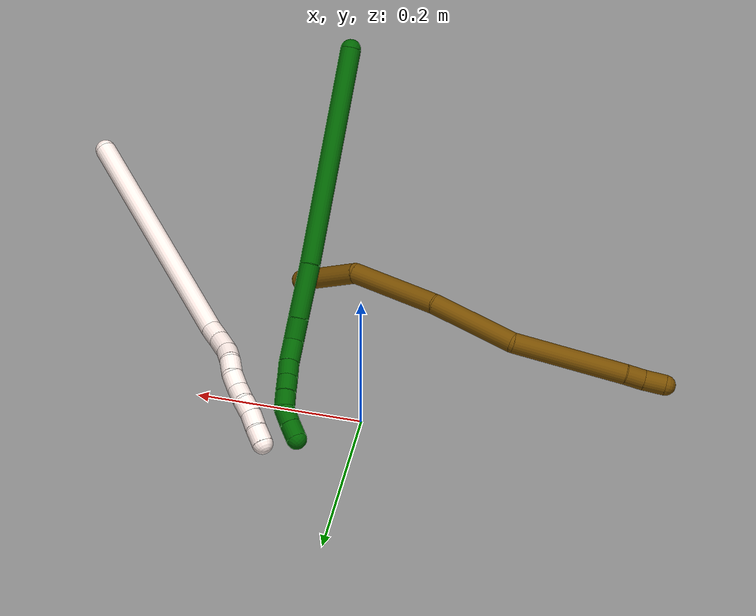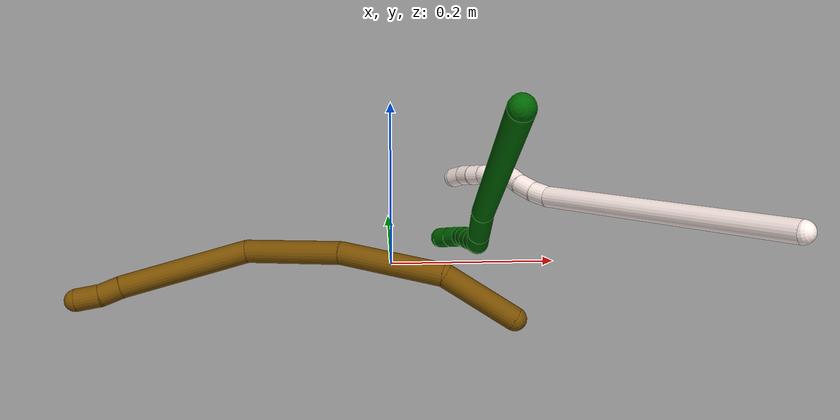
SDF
<sdf version="1.7">
 <world name="default">
  <model name="6">
   <static>0</static>
   <link name="6">
    <collision name="collision-cylinder-e_1_1_4">
     <pose>0.045755 0.05452 -0.114457 -2.69705 0.346357 -1.31739</pose>
     <geometry><cylinder><radius>0.0125</radius><length>0.269566</length></cylinder></geometry>
     <surface>
      <friction><ode><mu>1.16</mu><mu2>1.16</mu2><slip1>0</slip1><slip2>0</slip2></ode></friction>
      <contact><ode><kp>1e+06</kp><kd>1</kd><max_vel>0</max_vel><min_depth>0.001</min_depth></ode></contact>
     </surface>
    </collision>
    <visual name="visual-cylinder-e_1_1_4">
     <pose>0.045755 0.05452 -0.114457 -2.69705 0.346357 -1.31739</pose>
     <geometry><cylinder><radius>0.0125</radius><length>0.269566</length></cylinder></geometry>
     <material><ambient>0 0.392157 0.003922 1</ambient></material>
    </visual>
    <collision name="collision-cylinder-e_2_4_5">
     <pose>0.101264 0.124661 -0.256332 -2.62373 0.29977 -1.03636</pose>
     <geometry><cylinder><radius>0.0125</radius><length>0.066055</length></cylinder></geometry>
     <surface>
      <friction><ode><mu>1.16</mu><mu2>1.16</mu2><slip1>0</slip1><slip2>0</slip2></ode></friction>
      <contact><ode><kp>1e+06</kp><kd>1</kd><max_vel>0</max_vel><min_depth>0.001</min_depth></ode></contact>
     </surface>
    </collision>
    <visual name="visual-cylinder-e_2_4_5">
     <pose>0.101264 0.124661 -0.256332 -2.62373 0.29977 -1.03636</pose>
     <geometry><cylinder><radius>0.0125</radius><length>0.066055</length></cylinder></geometry>
     <material><ambient>0 0.392157 0.003922 1</ambient></material>
    </visual>
    <collision name="collision-cylinder-e_3_5_6">
     <pose>0.115183 0.147477 -0.295336 -2.58581 0.296487 -0.964534</pose>
     <geometry><cylinder><radius>0.0125</radius><length>0.028523</length></cylinder></geometry>
     <surface>
      <friction><ode><mu>1.16</mu><mu2>1.16</mu2><slip1>0</slip1><slip2>0</slip2></ode></friction>
      <contact><ode><kp>1e+06</kp><kd>1</kd><max_vel>0</max_vel><min_depth>0.001</min_depth></ode></contact>
     </surface>
    </collision>
    <visual name="visual-cylinder-e_3_5_6">
     <pose>0.115183 0.147477 -0.295336 -2.58581 0.296487 -0.964534</pose>
     <geometry><cylinder><radius>0.0125</radius><length>0.028523</length></cylinder></geometry>
     <material><ambient>0 0.392157 0.003922 1</ambient></material>
    </visual>
    <collision name="collision-cylinder-e_4_6_7">
     <pose>0.125493 0.15517 -0.32133 -3.10717 0.402814 -2.97339</pose>
     <geometry><cylinder><radius>0.0125</radius><length>0.031341</length></cylinder></geometry>
     <surface>
      <friction><ode><mu>1.16</mu><mu2>1.16</mu2><slip1>0</slip1><slip2>0</slip2></ode></friction>
      <contact><ode><kp>1e+06</kp><kd>1</kd><max_vel>0</max_vel><min_depth>0.001</min_depth></ode></contact>
     </surface>
    </collision>
    <visual name="visual-cylinder-e_4_6_7">
     <pose>0.125493 0.15517 -0.32133 -3.10717 0.402814 -2.97339</pose>
     <geometry><cylinder><radius>0.0125</radius><length>0.031341</length></cylinder></geometry>
     <material><ambient>0 0.392157 0.003922 1</ambient></material>
    </visual>
    <collision name="collision-cylinder-e_5_7_8">
     <pose>0.136616 0.156085 -0.344762 -3.09518 0.503747 -2.9617</pose>
     <geometry><cylinder><radius>0.0125</radius><length>0.020631</length></cylinder></geometry>
     <surface>
      <friction><ode><mu>1.16</mu><mu2>1.16</mu2><slip1>0</slip1><slip2>0</slip2></ode></friction>
      <contact><ode><kp>1e+06</kp><kd>1</kd><max_vel>0</max_vel><min_depth>0.001</min_depth></ode></contact>
     </surface>
    </collision>
    <visual name="visual-cylinder-e_5_7_8">
     <pose>0.136616 0.156085 -0.344762 -3.09518 0.503747 -2.9617</pose>
     <geometry><cylinder><radius>0.0125</radius><length>0.020631</length></cylinder></geometry>
     <material><ambient>0 0.392157 0.003922 1</ambient></material>
    </visual>
    <collision name="collision-cylinder-e_6_8_9">
     <pose>0.146455 0.156569 -0.363136 -3.13472 0.479372 -3.11345</pose>
     <geometry><cylinder><radius>0.0125</radius><length>0.021075</length></cylinder></geometry>
     <surface>
      <friction><ode><mu>1.16</mu><mu2>1.16</mu2><slip1>0</slip1><slip2>0</slip2></ode></friction>
      <contact><ode><kp>1e+06</kp><kd>1</kd><max_vel>0</max_vel><min_depth>0.001</min_depth></ode></contact>
     </surface>
    </collision>
    <visual name="visual-cylinder-e_6_8_9">
     <pose>0.146455 0.156569 -0.363136 -3.13472 0.479372 -3.11345</pose>
     <geometry><cylinder><radius>0.0125</radius><length>0.021075</length></cylinder></geometry>
     <material><ambient>0 0.392157 0.003922 1</ambient></material>
    </visual>
    <collision name="collision-cylinder-e_7_9_10">
     <pose>0.156285 0.157547 -0.381482 -3.04029 0.502519 -2.7516</pose>
     <geometry><cylinder><radius>0.0125</radius><length>0.020637</length></cylinder></geometry>
     <surface>
      <friction><ode><mu>1.16</mu><mu2>1.16</mu2><slip1>0</slip1><slip2>0</slip2></ode></friction>
      <contact><ode><kp>1e+06</kp><kd>1</kd><max_vel>0</max_vel><min_depth>0.001</min_depth></ode></contact>
     </surface>
    </collision>
    <visual name="visual-cylinder-e_7_9_10">
     <pose>0.156285 0.157547 -0.381482 -3.04029 0.502519 -2.7516</pose>
     <geometry><cylinder><radius>0.0125</radius><length>0.020637</length></cylinder></geometry>
     <material><ambient>0 0.392157 0.003922 1</ambient></material>
    </visual>
    <collision name="collision-cylinder-e_8_10_11">
     <pose>0.169825 0.159643 -0.397018 -2.96291 0.911291 -2.77997</pose>
     <geometry><cylinder><radius>0.0125</radius><length>0.021689</length></cylinder></geometry>
     <surface>
      <friction><ode><mu>1.16</mu><mu2>1.16</mu2><slip1>0</slip1><slip2>0</slip2></ode></friction>
      <contact><ode><kp>1e+06</kp><kd>1</kd><max_vel>0</max_vel><min_depth>0.001</min_depth></ode></contact>
     </surface>
    </collision>
    <visual name="visual-cylinder-e_8_10_11">
     <pose>0.169825 0.159643 -0.397018 -2.96291 0.911291 -2.77997</pose>
     <geometry><cylinder><radius>0.0125</radius><length>0.021689</length></cylinder></geometry>
     <material><ambient>0 0.392157 0.003922 1</ambient></material>
    </visual>
    <collision name="collision-cylinder-e_9_11_2">
     <pose>0.186703 0.161976 -0.409434 -2.948 0.946156 -2.76664</pose>
     <geometry><cylinder><radius>0.0125</radius><length>0.020482</length></cylinder></geometry>
     <surface>
      <friction><ode><mu>1.16</mu><mu2>1.16</mu2><slip1>0</slip1><slip2>0</slip2></ode></friction>
      <contact><ode><kp>1e+06</kp><kd>1</kd><max_vel>0</max_vel><min_depth>0.001</min_depth></ode></contact>
     </surface>
    </collision>
    <visual name="visual-cylinder-e_9_11_2">
     <pose>0.186703 0.161976 -0.409434 -2.948 0.946156 -2.76664</pose>
     <geometry><cylinder><radius>0.0125</radius><length>0.020482</length></cylinder></geometry>
     <material><ambient>0 0.392157 0.003922 1</ambient></material>
    </visual>
    <collision name="collision-sphere-2">
     <pose>0.19501 0.163128 -0.415311 0 -0 0</pose>
     <geometry><sphere><radius>0.0125</radius></sphere></geometry>
     <surface>
      <friction><ode><mu>1.16</mu><mu2>1.16</mu2><slip1>0</slip1><slip2>0</slip2></ode></friction>
      <contact><ode><kp>1e+06</kp><kd>1</kd><max_vel>0</max_vel><min_depth>0.001</min_depth></ode></contact>
     </surface>
    </collision>
    <visual name="visual-sphere-2">
     <pose>0.19501 0.163128 -0.415311 0 -0 0</pose>
     <geometry><sphere><radius>0.0125</radius></sphere></geometry>
     <material><ambient>0 0.392157 0.003922 1</ambient></material>
    </visual>
    <collision name="collision-sphere-11">
     <pose>0.178396 0.160824 -0.403557 0 -0 0</pose>
     <geometry><sphere><radius>0.0125</radius></sphere></geometry>
     <surface>
      <friction><ode><mu>1.16</mu><mu2>1.16</mu2><slip1>0</slip1><slip2>0</slip2></ode></friction>
      <contact><ode><kp>1e+06</kp><kd>1</kd><max_vel>0</max_vel><min_depth>0.001</min_depth></ode></contact>
     </surface>
    </collision>
    <visual name="visual-sphere-11">
     <pose>0.178396 0.160824 -0.403557 0 -0 0</pose>
     <geometry><sphere><radius>0.0125</radius></sphere></geometry>
     <material><ambient>0 0.392157 0.003922 1</ambient></material>
    </visual>
    <collision name="collision-sphere-10">
     <pose>0.161255 0.158462 -0.390479 0 -0 0</pose>
     <geometry><sphere><radius>0.0125</radius></sphere></geometry>
     <surface>
      <friction><ode><mu>1.16</mu><mu2>1.16</mu2><slip1>0</slip1><slip2>0</slip2></ode></friction>
      <contact><ode><kp>1e+06</kp><kd>1</kd><max_vel>0</max_vel><min_depth>0.001</min_depth></ode></contact>
     </surface>
    </collision>
    <visual name="visual-sphere-10">
     <pose>0.161255 0.158462 -0.390479 0 -0 0</pose>
     <geometry><sphere><radius>0.0125</radius></sphere></geometry>
     <material><ambient>0 0.392157 0.003922 1</ambient></material>
    </visual>
    <collision name="collision-sphere-9">
     <pose>0.151315 0.156633 -0.372486 0 -0 0</pose>
     <geometry><sphere><radius>0.0125</radius></sphere></geometry>
     <surface>
      <friction><ode><mu>1.16</mu><mu2>1.16</mu2><slip1>0</slip1><slip2>0</slip2></ode></friction>
      <contact><ode><kp>1e+06</kp><kd>1</kd><max_vel>0</max_vel><min_depth>0.001</min_depth></ode></contact>
     </surface>
    </collision>
    <visual name="visual-sphere-9">
     <pose>0.151315 0.156633 -0.372486 0 -0 0</pose>
     <geometry><sphere><radius>0.0125</radius></sphere></geometry>
     <material><ambient>0 0.392157 0.003922 1</ambient></material>
    </visual>
    <collision name="collision-sphere-4">
     <pose>0.091511 0.109041 -0.228915 0 -0 0</pose>
     <geometry><sphere><radius>0.0125</radius></sphere></geometry>
     <surface>
      <friction><ode><mu>1.16</mu><mu2>1.16</mu2><slip1>0</slip1><slip2>0</slip2></ode></friction>
      <contact><ode><kp>1e+06</kp><kd>1</kd><max_vel>0</max_vel><min_depth>0.001</min_depth></ode></contact>
     </surface>
    </collision>
    <visual name="visual-sphere-4">
     <pose>0.091511 0.109041 -0.228915 0 -0 0</pose>
     <geometry><sphere><radius>0.0125</radius></sphere></geometry>
     <material><ambient>0 0.392157 0.003922 1</ambient></material>
    </visual>
    <collision name="collision-sphere-1">
     <geometry><sphere><radius>0.0125</radius></sphere></geometry>
     <surface>
      <friction><ode><mu>1.16</mu><mu2>1.16</mu2><slip1>0</slip1><slip2>0</slip2></ode></friction>
      <contact><ode><kp>1e+06</kp><kd>1</kd><max_vel>0</max_vel><min_depth>0.001</min_depth></ode></contact>
     </surface>
    </collision>
    <visual name="visual-sphere-1">
     <geometry><sphere><radius>0.0125</radius></sphere></geometry>
     <material><ambient>0 0.392157 0.003922 1</ambient></material>
    </visual>
    <collision name="collision-sphere-8">
     <pose>0.141595 0.156504 -0.353787 0 -0 0</pose>
     <geometry><sphere><radius>0.0125</radius></sphere></geometry>
     <surface>
      <friction><ode><mu>1.16</mu><mu2>1.16</mu2><slip1>0</slip1><slip2>0</slip2></ode></friction>
      <contact><ode><kp>1e+06</kp><kd>1</kd><max_vel>0</max_vel><min_depth>0.001</min_depth></ode></contact>
     </surface>
    </collision>
    <visual name="visual-sphere-8">
     <pose>0.141595 0.156504 -0.353787 0 -0 0</pose>
     <geometry><sphere><radius>0.0125</radius></sphere></geometry>
     <material><ambient>0 0.392157 0.003922 1</ambient></material>
    </visual>
    <collision name="collision-sphere-5">
     <pose>0.111017 0.140281 -0.283749 0 -0 0</pose>
     <geometry><sphere><radius>0.0125</radius></sphere></geometry>
     <surface>
      <friction><ode><mu>1.16</mu><mu2>1.16</mu2><slip1>0</slip1><slip2>0</slip2></ode></friction>
      <contact><ode><kp>1e+06</kp><kd>1</kd><max_vel>0</max_vel><min_depth>0.001</min_depth></ode></contact>
     </surface>
    </collision>
    <visual name="visual-sphere-5">
     <pose>0.111017 0.140281 -0.283749 0 -0 0</pose>
     <geometry><sphere><radius>0.0125</radius></sphere></geometry>
     <material><ambient>0 0.392157 0.003922 1</ambient></material>
    </visual>
    <collision name="collision-sphere-6">
     <pose>0.11935 0.154674 -0.306922 0 -0 0</pose>
     <geometry><sphere><radius>0.0125</radius></sphere></geometry>
     <surface>
      <friction><ode><mu>1.16</mu><mu2>1.16</mu2><slip1>0</slip1><slip2>0</slip2></ode></friction>
      <contact><ode><kp>1e+06</kp><kd>1</kd><max_vel>0</max_vel><min_depth>0.001</min_depth></ode></contact>
     </surface>
    </collision>
    <visual name="visual-sphere-6">
     <pose>0.11935 0.154674 -0.306922 0 -0 0</pose>
     <geometry><sphere><radius>0.0125</radius></sphere></geometry>
     <material><ambient>0 0.392157 0.003922 1</ambient></material>
    </visual>
    <collision name="collision-sphere-7">
     <pose>0.131636 0.155666 -0.335738 0 -0 0</pose>
     <geometry><sphere><radius>0.0125</radius></sphere></geometry>
     <surface>
      <friction><ode><mu>1.16</mu><mu2>1.16</mu2><slip1>0</slip1><slip2>0</slip2></ode></friction>
      <contact><ode><kp>1e+06</kp><kd>1</kd><max_vel>0</max_vel><min_depth>0.001</min_depth></ode></contact>
     </surface>
    </collision>
    <visual name="visual-sphere-7">
     <pose>0.131636 0.155666 -0.335738 0 -0 0</pose>
     <geometry><sphere><radius>0.0125</radius></sphere></geometry>
     <material><ambient>0 0.392157 0.003922 1</ambient></material>
    </visual>
    <inertial>
     <pose>0.085759 0.097105 -0.211832 0 -0 0</pose>
     <mass>0.5</mass>
     <inertia>
      <ixx>-0.001114</ixx>
      <ixy>0</ixy>
      <ixz>0</ixz>
      <iyy>-0.001647</iyy>
      <iyz>0</iyz>
      <izz>-0.001285</izz>
     </inertia>
    </inertial>
   </link>
   <pose>0.095877 -0.363521 0.258541 -1.41943 0.112625 2.80318</pose>
  </model>
  <model name="11">
   <static>0</static>
   <link name="11">
    <collision name="collision-cylinder-e_1_1_4">
     <pose>-0.018289 0.018216 -0.154237 -3.02403 -0.117222 1.56791</pose>
     <geometry><cylinder><radius>0.0125</radius><length>0.312764</length></cylinder></geometry>
     <surface>
      <friction><ode><mu>1.16</mu><mu2>1.16</mu2><slip1>0</slip1><slip2>0</slip2></ode></friction>
      <contact><ode><kp>1e+06</kp><kd>1</kd><max_vel>0</max_vel><min_depth>0.001</min_depth></ode></contact>
     </surface>
    </collision>
    <visual name="visual-cylinder-e_1_1_4">
     <pose>-0.018289 0.018216 -0.154237 -3.02403 -0.117222 1.56791</pose>
     <geometry><cylinder><radius>0.0125</radius><length>0.312764</length></cylinder></geometry>
     <material><ambient>1 0.933333 0.909804 1</ambient></material>
    </visual>
    <collision name="collision-cylinder-e_2_4_5">
     <pose>-0.039181 0.038991 -0.318856 -2.89988 -0.238672 1.55804</pose>
     <geometry><cylinder><radius>0.0125</radius><length>0.02201</length></cylinder></geometry>
     <surface>
      <friction><ode><mu>1.16</mu><mu2>1.16</mu2><slip1>0</slip1><slip2>0</slip2></ode></friction>
      <contact><ode><kp>1e+06</kp><kd>1</kd><max_vel>0</max_vel><min_depth>0.001</min_depth></ode></contact>
     </surface>
    </collision>
    <visual name="visual-cylinder-e_2_4_5">
     <pose>-0.039181 0.038991 -0.318856 -2.89988 -0.238672 1.55804</pose>
     <geometry><cylinder><radius>0.0125</radius><length>0.02201</length></cylinder></geometry>
     <material><ambient>1 0.933333 0.909804 1</ambient></material>
    </visual>
    <collision name="collision-cylinder-e_3_5_6">
     <pose>-0.044761 0.045998 -0.340385 -2.76203 -0.243239 1.13332</pose>
     <geometry><cylinder><radius>0.0125</radius><length>0.024731</length></cylinder></geometry>
     <surface>
      <friction><ode><mu>1.16</mu><mu2>1.16</mu2><slip1>0</slip1><slip2>0</slip2></ode></friction>
      <contact><ode><kp>1e+06</kp><kd>1</kd><max_vel>0</max_vel><min_depth>0.001</min_depth></ode></contact>
     </surface>
    </collision>
    <visual name="visual-cylinder-e_3_5_6">
     <pose>-0.044761 0.045998 -0.340385 -2.76203 -0.243239 1.13332</pose>
     <geometry><cylinder><radius>0.0125</radius><length>0.024731</length></cylinder></geometry>
     <material><ambient>1 0.933333 0.909804 1</ambient></material>
    </visual>
    <collision name="collision-cylinder-e_4_6_7">
     <pose>-0.048822 0.055317 -0.360269 -2.63288 -0.107912 0.409641</pose>
     <geometry><cylinder><radius>0.0125</radius><length>0.020124</length></cylinder></geometry>
     <surface>
      <friction><ode><mu>1.16</mu><mu2>1.16</mu2><slip1>0</slip1><slip2>0</slip2></ode></friction>
      <contact><ode><kp>1e+06</kp><kd>1</kd><max_vel>0</max_vel><min_depth>0.001</min_depth></ode></contact>
     </surface>
    </collision>
    <visual name="visual-cylinder-e_4_6_7">
     <pose>-0.048822 0.055317 -0.360269 -2.63288 -0.107912 0.409641</pose>
     <geometry><cylinder><radius>0.0125</radius><length>0.020124</length></cylinder></geometry>
     <material><ambient>1 0.933333 0.909804 1</ambient></material>
    </visual>
    <collision name="collision-cylinder-e_5_7_8">
     <pose>-0.048516 0.063077 -0.378661 -2.85094 0.13708 -0.87714</pose>
     <geometry><cylinder><radius>0.0125</radius><length>0.020345</length></cylinder></geometry>
     <surface>
      <friction><ode><mu>1.16</mu><mu2>1.16</mu2><slip1>0</slip1><slip2>0</slip2></ode></friction>
      <contact><ode><kp>1e+06</kp><kd>1</kd><max_vel>0</max_vel><min_depth>0.001</min_depth></ode></contact>
     </surface>
    </collision>
    <visual name="visual-cylinder-e_5_7_8">
     <pose>-0.048516 0.063077 -0.378661 -2.85094 0.13708 -0.87714</pose>
     <geometry><cylinder><radius>0.0125</radius><length>0.020345</length></cylinder></geometry>
     <material><ambient>1 0.933333 0.909804 1</ambient></material>
    </visual>
    <collision name="collision-cylinder-e_6_8_9">
     <pose>-0.046256 0.065968 -0.398289 -3.14123 0.086991 -3.13338</pose>
     <geometry><cylinder><radius>0.0125</radius><length>0.020023</length></cylinder></geometry>
     <surface>
      <friction><ode><mu>1.16</mu><mu2>1.16</mu2><slip1>0</slip1><slip2>0</slip2></ode></friction>
      <contact><ode><kp>1e+06</kp><kd>1</kd><max_vel>0</max_vel><min_depth>0.001</min_depth></ode></contact>
     </surface>
    </collision>
    <visual name="visual-cylinder-e_6_8_9">
     <pose>-0.046256 0.065968 -0.398289 -3.14123 0.086991 -3.13338</pose>
     <geometry><cylinder><radius>0.0125</radius><length>0.020023</length></cylinder></geometry>
     <material><ambient>1 0.933333 0.909804 1</ambient></material>
    </visual>
    <collision name="collision-cylinder-e_7_9_10">
     <pose>-0.046367 0.068406 -0.417913 -2.89449 -0.098264 0.754032</pose>
     <geometry><cylinder><radius>0.0125</radius><length>0.020001</length></cylinder></geometry>
     <surface>
      <friction><ode><mu>1.16</mu><mu2>1.16</mu2><slip1>0</slip1><slip2>0</slip2></ode></friction>
      <contact><ode><kp>1e+06</kp><kd>1</kd><max_vel>0</max_vel><min_depth>0.001</min_depth></ode></contact>
     </surface>
    </collision>
    <visual name="visual-cylinder-e_7_9_10">
     <pose>-0.046367 0.068406 -0.417913 -2.89449 -0.098264 0.754032</pose>
     <geometry><cylinder><radius>0.0125</radius><length>0.020001</length></cylinder></geometry>
     <material><ambient>1 0.933333 0.909804 1</ambient></material>
    </visual>
    <collision name="collision-cylinder-e_8_10_11">
     <pose>-0.047779 0.070866 -0.437554 -3.13906 -0.043038 3.02426</pose>
     <geometry><cylinder><radius>0.0125</radius><length>0.020002</length></cylinder></geometry>
     <surface>
      <friction><ode><mu>1.16</mu><mu2>1.16</mu2><slip1>0</slip1><slip2>0</slip2></ode></friction>
      <contact><ode><kp>1e+06</kp><kd>1</kd><max_vel>0</max_vel><min_depth>0.001</min_depth></ode></contact>
     </surface>
    </collision>
    <visual name="visual-cylinder-e_8_10_11">
     <pose>-0.047779 0.070866 -0.437554 -3.13906 -0.043038 3.02426</pose>
     <geometry><cylinder><radius>0.0125</radius><length>0.020002</length></cylinder></geometry>
     <material><ambient>1 0.933333 0.909804 1</ambient></material>
    </visual>
    <collision name="collision-cylinder-e_9_11_12">
     <pose>-0.047659 0.07201 -0.457467 -3.02923 0.055046 -0.910408</pose>
     <geometry><cylinder><radius>0.0125</radius><length>0.02</length></cylinder></geometry>
     <surface>
      <friction><ode><mu>1.16</mu><mu2>1.16</mu2><slip1>0</slip1><slip2>0</slip2></ode></friction>
      <contact><ode><kp>1e+06</kp><kd>1</kd><max_vel>0</max_vel><min_depth>0.001</min_depth></ode></contact>
     </surface>
    </collision>
    <visual name="visual-cylinder-e_9_11_12">
     <pose>-0.047659 0.07201 -0.457467 -3.02923 0.055046 -0.910408</pose>
     <geometry><cylinder><radius>0.0125</radius><length>0.02</length></cylinder></geometry>
     <material><ambient>1 0.933333 0.909804 1</ambient></material>
    </visual>
    <collision name="collision-cylinder-e_10_12_2">
     <pose>-0.046327 0.07247 -0.477337 3.07534 0.078239 1.7365</pose>
     <geometry><cylinder><radius>0.0125</radius><length>0.02</length></cylinder></geometry>
     <surface>
      <friction><ode><mu>1.16</mu><mu2>1.16</mu2><slip1>0</slip1><slip2>0</slip2></ode></friction>
      <contact><ode><kp>1e+06</kp><kd>1</kd><max_vel>0</max_vel><min_depth>0.001</min_depth></ode></contact>
     </surface>
    </collision>
    <visual name="visual-cylinder-e_10_12_2">
     <pose>-0.046327 0.07247 -0.477337 3.07534 0.078239 1.7365</pose>
     <geometry><cylinder><radius>0.0125</radius><length>0.02</length></cylinder></geometry>
     <material><ambient>1 0.933333 0.909804 1</ambient></material>
    </visual>
    <collision name="collision-sphere-2">
     <pose>-0.045545 0.07181 -0.487284 0 -0 0</pose>
     <geometry><sphere><radius>0.0125</radius></sphere></geometry>
     <surface>
      <friction><ode><mu>1.16</mu><mu2>1.16</mu2><slip1>0</slip1><slip2>0</slip2></ode></friction>
      <contact><ode><kp>1e+06</kp><kd>1</kd><max_vel>0</max_vel><min_depth>0.001</min_depth></ode></contact>
     </surface>
    </collision>
    <visual name="visual-sphere-2">
     <pose>-0.045545 0.07181 -0.487284 0 -0 0</pose>
     <geometry><sphere><radius>0.0125</radius></sphere></geometry>
     <material><ambient>1 0.933333 0.909804 1</ambient></material>
    </visual>
    <collision name="collision-sphere-12">
     <pose>-0.047109 0.07313 -0.467389 0 -0 0</pose>
     <geometry><sphere><radius>0.0125</radius></sphere></geometry>
     <surface>
      <friction><ode><mu>1.16</mu><mu2>1.16</mu2><slip1>0</slip1><slip2>0</slip2></ode></friction>
      <contact><ode><kp>1e+06</kp><kd>1</kd><max_vel>0</max_vel><min_depth>0.001</min_depth></ode></contact>
     </surface>
    </collision>
    <visual name="visual-sphere-12">
     <pose>-0.047109 0.07313 -0.467389 0 -0 0</pose>
     <geometry><sphere><radius>0.0125</radius></sphere></geometry>
     <material><ambient>1 0.933333 0.909804 1</ambient></material>
    </visual>
    <collision name="collision-sphere-11">
     <pose>-0.048209 0.070891 -0.447546 0 -0 0</pose>
     <geometry><sphere><radius>0.0125</radius></sphere></geometry>
     <surface>
      <friction><ode><mu>1.16</mu><mu2>1.16</mu2><slip1>0</slip1><slip2>0</slip2></ode></friction>
      <contact><ode><kp>1e+06</kp><kd>1</kd><max_vel>0</max_vel><min_depth>0.001</min_depth></ode></contact>
     </surface>
    </collision>
    <visual name="visual-sphere-11">
     <pose>-0.048209 0.070891 -0.447546 0 -0 0</pose>
     <geometry><sphere><radius>0.0125</radius></sphere></geometry>
     <material><ambient>1 0.933333 0.909804 1</ambient></material>
    </visual>
    <collision name="collision-sphere-10">
     <pose>-0.047348 0.07084 -0.427563 0 -0 0</pose>
     <geometry><sphere><radius>0.0125</radius></sphere></geometry>
     <surface>
      <friction><ode><mu>1.16</mu><mu2>1.16</mu2><slip1>0</slip1><slip2>0</slip2></ode></friction>
      <contact><ode><kp>1e+06</kp><kd>1</kd><max_vel>0</max_vel><min_depth>0.001</min_depth></ode></contact>
     </surface>
    </collision>
    <visual name="visual-sphere-10">
     <pose>-0.047348 0.07084 -0.427563 0 -0 0</pose>
     <geometry><sphere><radius>0.0125</radius></sphere></geometry>
     <material><ambient>1 0.933333 0.909804 1</ambient></material>
    </visual>
    <collision name="collision-sphere-9">
     <pose>-0.045386 0.065972 -0.408263 0 -0 0</pose>
     <geometry><sphere><radius>0.0125</radius></sphere></geometry>
     <surface>
      <friction><ode><mu>1.16</mu><mu2>1.16</mu2><slip1>0</slip1><slip2>0</slip2></ode></friction>
      <contact><ode><kp>1e+06</kp><kd>1</kd><max_vel>0</max_vel><min_depth>0.001</min_depth></ode></contact>
     </surface>
    </collision>
    <visual name="visual-sphere-9">
     <pose>-0.045386 0.065972 -0.408263 0 -0 0</pose>
     <geometry><sphere><radius>0.0125</radius></sphere></geometry>
     <material><ambient>1 0.933333 0.909804 1</ambient></material>
    </visual>
    <collision name="collision-sphere-4">
     <pose>-0.036579 0.036432 -0.308474 0 -0 0</pose>
     <geometry><sphere><radius>0.0125</radius></sphere></geometry>
     <surface>
      <friction><ode><mu>1.16</mu><mu2>1.16</mu2><slip1>0</slip1><slip2>0</slip2></ode></friction>
      <contact><ode><kp>1e+06</kp><kd>1</kd><max_vel>0</max_vel><min_depth>0.001</min_depth></ode></contact>
     </surface>
    </collision>
    <visual name="visual-sphere-4">
     <pose>-0.036579 0.036432 -0.308474 0 -0 0</pose>
     <geometry><sphere><radius>0.0125</radius></sphere></geometry>
     <material><ambient>1 0.933333 0.909804 1</ambient></material>
    </visual>
    <collision name="collision-sphere-1">
     <geometry><sphere><radius>0.0125</radius></sphere></geometry>
     <surface>
      <friction><ode><mu>1.16</mu><mu2>1.16</mu2><slip1>0</slip1><slip2>0</slip2></ode></friction>
      <contact><ode><kp>1e+06</kp><kd>1</kd><max_vel>0</max_vel><min_depth>0.001</min_depth></ode></contact>
     </surface>
    </collision>
    <visual name="visual-sphere-1">
     <geometry><sphere><radius>0.0125</radius></sphere></geometry>
     <material><ambient>1 0.933333 0.909804 1</ambient></material>
    </visual>
    <collision name="collision-sphere-8">
     <pose>-0.047126 0.065965 -0.388315 0 -0 0</pose>
     <geometry><sphere><radius>0.0125</radius></sphere></geometry>
     <surface>
      <friction><ode><mu>1.16</mu><mu2>1.16</mu2><slip1>0</slip1><slip2>0</slip2></ode></friction>
      <contact><ode><kp>1e+06</kp><kd>1</kd><max_vel>0</max_vel><min_depth>0.001</min_depth></ode></contact>
     </surface>
    </collision>
    <visual name="visual-sphere-8">
     <pose>-0.047126 0.065965 -0.388315 0 -0 0</pose>
     <geometry><sphere><radius>0.0125</radius></sphere></geometry>
     <material><ambient>1 0.933333 0.909804 1</ambient></material>
    </visual>
    <collision name="collision-sphere-5">
     <pose>-0.041782 0.041551 -0.329238 0 -0 0</pose>
     <geometry><sphere><radius>0.0125</radius></sphere></geometry>
     <surface>
      <friction><ode><mu>1.16</mu><mu2>1.16</mu2><slip1>0</slip1><slip2>0</slip2></ode></friction>
      <contact><ode><kp>1e+06</kp><kd>1</kd><max_vel>0</max_vel><min_depth>0.001</min_depth></ode></contact>
     </surface>
    </collision>
    <visual name="visual-sphere-5">
     <pose>-0.041782 0.041551 -0.329238 0 -0 0</pose>
     <geometry><sphere><radius>0.0125</radius></sphere></geometry>
     <material><ambient>1 0.933333 0.909804 1</ambient></material>
    </visual>
    <collision name="collision-sphere-6">
     <pose>-0.047739 0.050444 -0.351533 0 -0 0</pose>
     <geometry><sphere><radius>0.0125</radius></sphere></geometry>
     <surface>
      <friction><ode><mu>1.16</mu><mu2>1.16</mu2><slip1>0</slip1><slip2>0</slip2></ode></friction>
      <contact><ode><kp>1e+06</kp><kd>1</kd><max_vel>0</max_vel><min_depth>0.001</min_depth></ode></contact>
     </surface>
    </collision>
    <visual name="visual-sphere-6">
     <pose>-0.047739 0.050444 -0.351533 0 -0 0</pose>
     <geometry><sphere><radius>0.0125</radius></sphere></geometry>
     <material><ambient>1 0.933333 0.909804 1</ambient></material>
    </visual>
    <collision name="collision-sphere-7">
     <pose>-0.049906 0.060189 -0.369006 0 -0 0</pose>
     <geometry><sphere><radius>0.0125</radius></sphere></geometry>
     <surface>
      <friction><ode><mu>1.16</mu><mu2>1.16</mu2><slip1>0</slip1><slip2>0</slip2></ode></friction>
      <contact><ode><kp>1e+06</kp><kd>1</kd><max_vel>0</max_vel><min_depth>0.001</min_depth></ode></contact>
     </surface>
    </collision>
    <visual name="visual-sphere-7">
     <pose>-0.049906 0.060189 -0.369006 0 -0 0</pose>
     <geometry><sphere><radius>0.0125</radius></sphere></geometry>
     <material><ambient>1 0.933333 0.909804 1</ambient></material>
    </visual>
    <inertial>
     <pose>-0.028696 0.034171 -0.244823 0 -0 0</pose>
     <mass>0.5</mass>
     <inertia>
      <ixx>0.002555</ixx>
      <ixy>0</ixy>
      <ixz>0</ixz>
      <iyy>0.002581</iyy>
      <iyz>0</iyz>
      <izz>-3.9e-05</izz>
     </inertia>
    </inertial>
   </link>
   <pose>0.383141 -0.266834 0.120134 1.23885 0.655266 0.456442</pose>
  </model>
  <model name="12">
   <static>0</static>
   <link name="12">
    <collision name="collision-cylinder-e_1_1_4">
     <pose>-0.036641 0.013438 -0.016564 -2.46001 -1.04363 2.03627</pose>
     <geometry><cylinder><radius>0.0125</radius><length>0.084794</length></cylinder></geometry>
     <surface>
      <friction><ode><mu>1.16</mu><mu2>1.16</mu2><slip1>0</slip1><slip2>0</slip2></ode></friction>
      <contact><ode><kp>1e+06</kp><kd>1</kd><max_vel>0</max_vel><min_depth>0.001</min_depth></ode></contact>
     </surface>
    </collision>
    <visual name="visual-cylinder-e_1_1_4">
     <pose>-0.036641 0.013438 -0.016564 -2.46001 -1.04363 2.03627</pose>
     <geometry><cylinder><radius>0.0125</radius><length>0.084794</length></cylinder></geometry>
     <material><ambient>0.466667 0.301961 0 1</ambient></material>
    </visual>
    <collision name="collision-cylinder-e_2_4_5">
     <pose>-0.105369 0.059336 -0.068239 -2.3954 -0.591028 1.32203</pose>
     <geometry><cylinder><radius>0.0125</radius><length>0.115169</length></cylinder></geometry>
     <surface>
      <friction><ode><mu>1.16</mu><mu2>1.16</mu2><slip1>0</slip1><slip2>0</slip2></ode></friction>
      <contact><ode><kp>1e+06</kp><kd>1</kd><max_vel>0</max_vel><min_depth>0.001</min_depth></ode></contact>
     </surface>
    </collision>
    <visual name="visual-cylinder-e_2_4_5">
     <pose>-0.105369 0.059336 -0.068239 -2.3954 -0.591028 1.32203</pose>
     <geometry><cylinder><radius>0.0125</radius><length>0.115169</length></cylinder></geometry>
     <material><ambient>0.466667 0.301961 0 1</ambient></material>
    </visual>
    <collision name="collision-cylinder-e_3_5_6">
     <pose>-0.160102 0.122118 -0.142675 -2.48476 -0.427867 1.13518</pose>
     <geometry><cylinder><radius>0.0125</radius><length>0.109157</length></cylinder></geometry>
     <surface>
      <friction><ode><mu>1.16</mu><mu2>1.16</mu2><slip1>0</slip1><slip2>0</slip2></ode></friction>
      <contact><ode><kp>1e+06</kp><kd>1</kd><max_vel>0</max_vel><min_depth>0.001</min_depth></ode></contact>
     </surface>
    </collision>
    <visual name="visual-cylinder-e_3_5_6">
     <pose>-0.160102 0.122118 -0.142675 -2.48476 -0.427867 1.13518</pose>
     <geometry><cylinder><radius>0.0125</radius><length>0.109157</length></cylinder></geometry>
     <material><ambient>0.466667 0.301961 0 1</ambient></material>
    </visual>
    <collision name="collision-cylinder-e_4_6_7">
     <pose>-0.202132 0.166631 -0.247834 -2.92928 -0.280247 1.84761</pose>
     <geometry><cylinder><radius>0.0125</radius><length>0.140159</length></cylinder></geometry>
     <surface>
      <friction><ode><mu>1.16</mu><mu2>1.16</mu2><slip1>0</slip1><slip2>0</slip2></ode></friction>
      <contact><ode><kp>1e+06</kp><kd>1</kd><max_vel>0</max_vel><min_depth>0.001</min_depth></ode></contact>
     </surface>
    </collision>
    <visual name="visual-cylinder-e_4_6_7">
     <pose>-0.202132 0.166631 -0.247834 -2.92928 -0.280247 1.84761</pose>
     <geometry><cylinder><radius>0.0125</radius><length>0.140159</length></cylinder></geometry>
     <material><ambient>0.466667 0.301961 0 1</ambient></material>
    </visual>
    <collision name="collision-cylinder-e_5_7_8">
     <pose>-0.223615 0.182665 -0.325195 -2.98312 -0.177914 1.6868</pose>
     <geometry><cylinder><radius>0.0125</radius><length>0.023722</length></cylinder></geometry>
     <surface>
      <friction><ode><mu>1.16</mu><mu2>1.16</mu2><slip1>0</slip1><slip2>0</slip2></ode></friction>
      <contact><ode><kp>1e+06</kp><kd>1</kd><max_vel>0</max_vel><min_depth>0.001</min_depth></ode></contact>
     </surface>
    </collision>
    <visual name="visual-cylinder-e_5_7_8">
     <pose>-0.223615 0.182665 -0.325195 -2.98312 -0.177914 1.6868</pose>
     <geometry><cylinder><radius>0.0125</radius><length>0.023722</length></cylinder></geometry>
     <material><ambient>0.466667 0.301961 0 1</ambient></material>
    </visual>
    <collision name="collision-cylinder-e_6_8_2">
     <pose>-0.230561 0.187508 -0.348959 -2.90105 -0.367255 1.98779</pose>
     <geometry><cylinder><radius>0.0125</radius><length>0.026999</length></cylinder></geometry>
     <surface>
      <friction><ode><mu>1.16</mu><mu2>1.16</mu2><slip1>0</slip1><slip2>0</slip2></ode></friction>
      <contact><ode><kp>1e+06</kp><kd>1</kd><max_vel>0</max_vel><min_depth>0.001</min_depth></ode></contact>
     </surface>
    </collision>
    <visual name="visual-cylinder-e_6_8_2">
     <pose>-0.230561 0.187508 -0.348959 -2.90105 -0.367255 1.98779</pose>
     <geometry><cylinder><radius>0.0125</radius><length>0.026999</length></cylinder></geometry>
     <material><ambient>0.466667 0.301961 0 1</ambient></material>
    </visual>
    <collision name="collision-sphere-2">
     <pose>-0.235408 0.19051 -0.361196 0 -0 0</pose>
     <geometry><sphere><radius>0.0125</radius></sphere></geometry>
     <surface>
      <friction><ode><mu>1.16</mu><mu2>1.16</mu2><slip1>0</slip1><slip2>0</slip2></ode></friction>
      <contact><ode><kp>1e+06</kp><kd>1</kd><max_vel>0</max_vel><min_depth>0.001</min_depth></ode></contact>
     </surface>
    </collision>
    <visual name="visual-sphere-2">
     <pose>-0.235408 0.19051 -0.361196 0 -0 0</pose>
     <geometry><sphere><radius>0.0125</radius></sphere></geometry>
     <material><ambient>0.466667 0.301961 0 1</ambient></material>
    </visual>
    <collision name="collision-sphere-4">
     <pose>-0.073282 0.026876 -0.033128 0 -0 0</pose>
     <geometry><sphere><radius>0.0125</radius></sphere></geometry>
     <surface>
      <friction><ode><mu>1.16</mu><mu2>1.16</mu2><slip1>0</slip1><slip2>0</slip2></ode></friction>
      <contact><ode><kp>1e+06</kp><kd>1</kd><max_vel>0</max_vel><min_depth>0.001</min_depth></ode></contact>
     </surface>
    </collision>
    <visual name="visual-sphere-4">
     <pose>-0.073282 0.026876 -0.033128 0 -0 0</pose>
     <geometry><sphere><radius>0.0125</radius></sphere></geometry>
     <material><ambient>0.466667 0.301961 0 1</ambient></material>
    </visual>
    <collision name="collision-sphere-1">
     <geometry><sphere><radius>0.0125</radius></sphere></geometry>
     <surface>
      <friction><ode><mu>1.16</mu><mu2>1.16</mu2><slip1>0</slip1><slip2>0</slip2></ode></friction>
      <contact><ode><kp>1e+06</kp><kd>1</kd><max_vel>0</max_vel><min_depth>0.001</min_depth></ode></contact>
     </surface>
    </collision>
    <visual name="visual-sphere-1">
     <geometry><sphere><radius>0.0125</radius></sphere></geometry>
     <material><ambient>0.466667 0.301961 0 1</ambient></material>
    </visual>
    <collision name="collision-sphere-8">
     <pose>-0.225714 0.184507 -0.336722 0 -0 0</pose>
     <geometry><sphere><radius>0.0125</radius></sphere></geometry>
     <surface>
      <friction><ode><mu>1.16</mu><mu2>1.16</mu2><slip1>0</slip1><slip2>0</slip2></ode></friction>
      <contact><ode><kp>1e+06</kp><kd>1</kd><max_vel>0</max_vel><min_depth>0.001</min_depth></ode></contact>
     </surface>
    </collision>
    <visual name="visual-sphere-8">
     <pose>-0.225714 0.184507 -0.336722 0 -0 0</pose>
     <geometry><sphere><radius>0.0125</radius></sphere></geometry>
     <material><ambient>0.466667 0.301961 0 1</ambient></material>
    </visual>
    <collision name="collision-sphere-5">
     <pose>-0.137456 0.091796 -0.103349 0 -0 0</pose>
     <geometry><sphere><radius>0.0125</radius></sphere></geometry>
     <surface>
      <friction><ode><mu>1.16</mu><mu2>1.16</mu2><slip1>0</slip1><slip2>0</slip2></ode></friction>
      <contact><ode><kp>1e+06</kp><kd>1</kd><max_vel>0</max_vel><min_depth>0.001</min_depth></ode></contact>
     </surface>
    </collision>
    <visual name="visual-sphere-5">
     <pose>-0.137456 0.091796 -0.103349 0 -0 0</pose>
     <geometry><sphere><radius>0.0125</radius></sphere></geometry>
     <material><ambient>0.466667 0.301961 0 1</ambient></material>
    </visual>
    <collision name="collision-sphere-6">
     <pose>-0.182749 0.15244 -0.182001 0 -0 0</pose>
     <geometry><sphere><radius>0.0125</radius></sphere></geometry>
     <surface>
      <friction><ode><mu>1.16</mu><mu2>1.16</mu2><slip1>0</slip1><slip2>0</slip2></ode></friction>
      <contact><ode><kp>1e+06</kp><kd>1</kd><max_vel>0</max_vel><min_depth>0.001</min_depth></ode></contact>
     </surface>
    </collision>
    <visual name="visual-sphere-6">
     <pose>-0.182749 0.15244 -0.182001 0 -0 0</pose>
     <geometry><sphere><radius>0.0125</radius></sphere></geometry>
     <material><ambient>0.466667 0.301961 0 1</ambient></material>
    </visual>
    <collision name="collision-sphere-7">
     <pose>-0.221516 0.180822 -0.313668 0 -0 0</pose>
     <geometry><sphere><radius>0.0125</radius></sphere></geometry>
     <surface>
      <friction><ode><mu>1.16</mu><mu2>1.16</mu2><slip1>0</slip1><slip2>0</slip2></ode></friction>
      <contact><ode><kp>1e+06</kp><kd>1</kd><max_vel>0</max_vel><min_depth>0.001</min_depth></ode></contact>
     </surface>
    </collision>
    <visual name="visual-sphere-7">
     <pose>-0.221516 0.180822 -0.313668 0 -0 0</pose>
     <geometry><sphere><radius>0.0125</radius></sphere></geometry>
     <material><ambient>0.466667 0.301961 0 1</ambient></material>
    </visual>
    <inertial>
     <pose>-0.145157 0.108107 -0.153419 0 -0 0</pose>
     <mass>0.5</mass>
     <inertia><ixx>0.000421</ixx><ixy>0</ixy><ixz>0</ixz><iyy>0.000595</iyy><iyz>0</iyz><izz>3e-06</izz></inertia>
    </inertial>
   </link>
   <pose>0.121357 -0.206199 0.011415 -0.302615 1.03914 -0.003392</pose>
  </model>
 </world>
</sdf>
